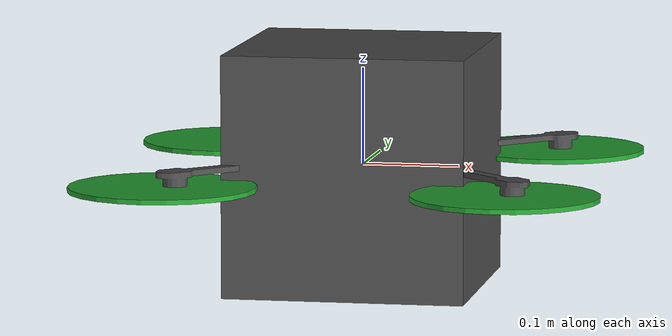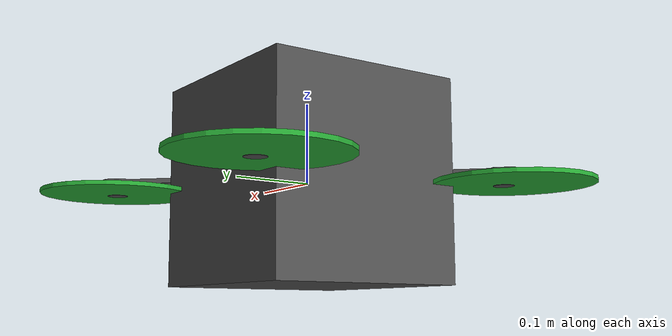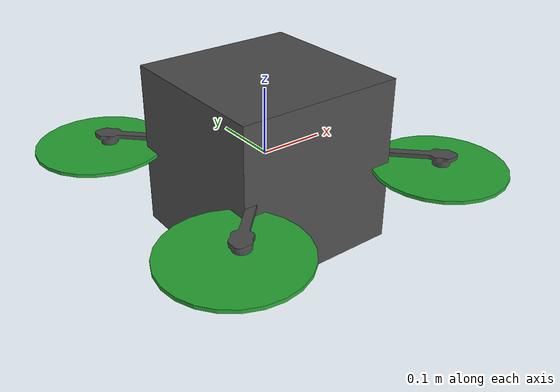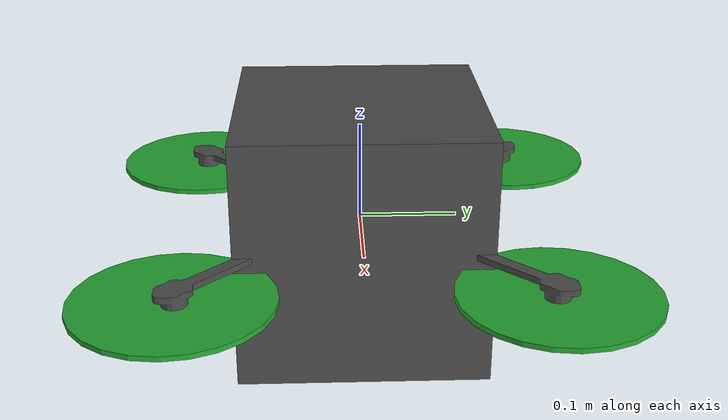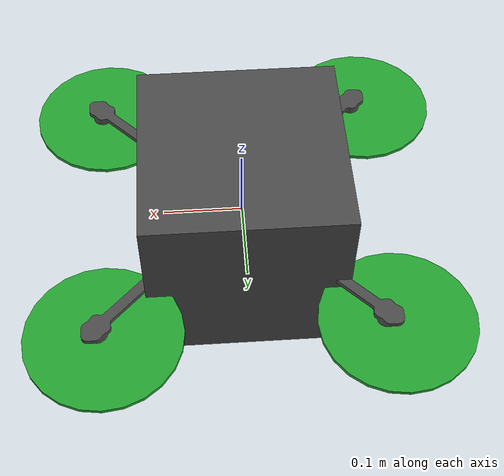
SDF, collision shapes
<sdf version='1.6'>
  <model name='omniquad'>
    <link name='base_link'>
      <pose>0 0 0 0 0 0</pose>
      <inertial>
        <pose>0 0 0 0 0 0</pose>
        <mass>2.260803677220633</mass>
        <inertia>
          <ixx>0.088329</ixx>
          <ixy>0.000113</ixy>
          <ixz>-2.4e-05</ixz>
          <iyy>0.101628</iyy>
          <iyz>0.7e-06</iyz>
          <izz>0.104362</izz>
        </inertia>
      </inertial>
      <collision name='base_link_inertia_collision'>
        <pose>0 0 0 0 0 0</pose>
        <geometry>
          <box>
            <size>0.25 0.25 0.25</size>
          </box>
        </geometry>
        <surface>
          <contact>
            <ode>
              <min_depth>0.001</min_depth>
              <max_vel>0</max_vel>
            </ode>
          </contact>
          <friction>
            <ode/>
          </friction>
        </surface>
      </collision>
      <visual name='base_link_inertia_visual'>
        <pose>0 0 0 0 0 0</pose>
        <geometry>
          <mesh>
            <scale>1e-3 1e-3 1e-3</scale>
            <uri>model://omniquad/meshes/base_new.stl</uri>
          </mesh>
        </geometry>
        <material>
          <script>
            <name>Gazebo/DarkGrey</name>
            <uri>file://media/materials/scripts/gazebo.material</uri>
          </script>
        </material>
      </visual>
      <gravity>1</gravity>
      <velocity_decay/>
      <self_collide>0</self_collide>
    </link>
    <link name='/imu_link'>
      <pose>0 0 0.05 0 0 0</pose>
      <inertial>
        <pose>0 0 0 0 0 0</pose>
        <mass>0.015</mass>
        <inertia>
          <ixx>1e-05</ixx>
          <ixy>0</ixy>
          <ixz>0</ixz>
          <iyy>1e-05</iyy>
          <iyz>0</iyz>
          <izz>1e-05</izz>
        </inertia>
      </inertial>
    </link>
    <joint name='imu_joint' type='revolute'>
      <child>/imu_link</child>
      <parent>base_link</parent>
      <axis>
        <xyz>1 0 0</xyz>
        <limit>
          <lower>0</lower>
          <upper>0</upper>
          <effort>0</effort>
          <velocity>0</velocity>
        </limit>
        <dynamics>
          <spring_reference>0</spring_reference>
          <spring_stiffness>0</spring_stiffness>
        </dynamics>
        <use_parent_model_frame>1</use_parent_model_frame>
      </axis>
    </joint>

    <!-- arm -->
    <link name='tilt_arm_1'>
      <pose>0.06 -0.05 0.0085 3.1415 0 -0.786</pose>
      <inertial>
        <pose>0.0 0.0 0.0 0 0 0</pose>
        <mass>0.2031180930624021</mass>
        <inertia>
          <ixx>0.00164</ixx>
          <ixy>0</ixy>
          <ixz>0</ixz>
          <iyy>0.0001829</iyy>
          <iyz>0</iyz>
          <izz>0.001461</izz>
        </inertia>
      </inertial>
      <collision name='tilt_arm_1_collision'>
        <geometry>
          <mesh>
            <scale>1e-3 1e-3 1e-3</scale>
            <uri>model://omniquad/meshes/arm.stl</uri>
          </mesh>
        </geometry>
        <surface>
          <contact>
            <ode/>
          </contact>
          <friction>
            <ode/>
          </friction>
        </surface>
      </collision>
      <visual name='tilt_arm_1_visual'>
        <geometry>
          <mesh>
            <scale>1e-3 1e-3 1e-3</scale>
            <uri>model://omniquad/meshes/arm.stl</uri>
          </mesh>
        </geometry>
        <material>
          <script>
            <name>Gazebo/DarkGrey</name>
            <uri>file://media/materials/scripts/gazebo.material</uri>
          </script>
        </material>
      </visual>
      <gravity>1</gravity>
      <velocity_decay/>
      <self_collide>0</self_collide>
    </link>

    <joint name='tilt_arm_1_joint' type='revolute'>
      <child>tilt_arm_1</child>
      <parent>base_link</parent>
      <axis>
        <xyz expressed_in="__model__">0.785 -0.785 0</xyz>
        <limit>
          <lower>-2</lower>
          <upper>2</upper>
        </limit>
        <dynamics>
          <friction>1.0</friction>
          <spring_reference>0</spring_reference>
          <spring_stiffness>0</spring_stiffness>
        </dynamics>
        <use_parent_model_frame>1</use_parent_model_frame>
      </axis>
    </joint>

    <link name='tilt_arm_2'>
      <pose>-0.04 0.05 0.0085 3.1415 0 2.35619</pose>
      <inertial>
        <pose>0.0 0.0 0.0 0 0 0</pose>
        <mass>0.2031180930624021</mass>
        <inertia>
          <ixx>0.00164</ixx>
          <ixy>0</ixy>
          <ixz>0</ixz>
          <iyy>0.0001829</iyy>
          <iyz>0</iyz>
          <izz>0.001461</izz>
        </inertia>
      </inertial>
      <collision name='tilt_arm_2_collision'>
        <geometry>
          <mesh>
            <scale>1e-3 1e-3 1e-3</scale>
            <uri>model://omniquad/meshes/arm.stl</uri>
          </mesh>
        </geometry>
        <surface>
          <contact>
            <ode/>
          </contact>
          <friction>
            <ode/>
          </friction>
        </surface>
      </collision>
      <visual name='tilt_arm_2_visual'>
        <geometry>
          <mesh>
            <scale>1e-3 1e-3 1e-3</scale>
            <uri>model://omniquad/meshes/arm.stl</uri>
          </mesh>
        </geometry>
        <material>
          <script>
            <name>Gazebo/DarkGrey</name>
            <uri>file://media/materials/scripts/gazebo.material</uri>
          </script>
        </material>
      </visual>
      <gravity>1</gravity>
      <velocity_decay/>
      <self_collide>0</self_collide>
    </link>

    <joint name='tilt_arm_2_joint' type='revolute'>
      <child>tilt_arm_2</child>
      <parent>base_link</parent>
      <axis>
        <xyz expressed_in="__model__">-0.785 0.785 0</xyz>
        <limit>
          <lower>-2</lower>
          <upper>2</upper>
        </limit>
        <dynamics>
          <friction>1.0</friction>
          <spring_reference>0</spring_reference>
          <spring_stiffness>0</spring_stiffness>
        </dynamics>
        <use_parent_model_frame>1</use_parent_model_frame>
      </axis>
    </joint>

    <link name='tilt_arm_3'>
      <pose>0.06 0.05 0.0085 3.1415 0 0.785398</pose>
      <inertial>
        <pose>0.0 0.0 0.0 0 0 0</pose>
        <mass>0.2031180930624021</mass>
        <inertia>
          <ixx>0.00164</ixx>
          <ixy>0</ixy>
          <ixz>0</ixz>
          <iyy>0.0001829</iyy>
          <iyz>0</iyz>
          <izz>0.001461</izz>
        </inertia>
      </inertial>
      <collision name='tilt_arm_3_collision'>
        <geometry>
          <mesh>
            <scale>1e-3 1e-3 1e-3</scale>
            <uri>model://omniquad/meshes/arm.stl</uri>
          </mesh>
        </geometry>
        <surface>
          <contact>
            <ode/>
          </contact>
          <friction>
            <ode/>
          </friction>
        </surface>
      </collision>
      <visual name='tilt_arm_3_visual'>
        <geometry>
          <mesh>
            <scale>1e-3 1e-3 1e-3</scale>
            <uri>model://omniquad/meshes/arm.stl</uri>
          </mesh>
        </geometry>
        <material>
          <script>
            <name>Gazebo/DarkGrey</name>
            <uri>file://media/materials/scripts/gazebo.material</uri>
          </script>
        </material>
      </visual>
      <gravity>1</gravity>
      <velocity_decay/>
      <self_collide>0</self_collide>
    </link>

    <joint name='tilt_arm_3_joint' type='revolute'>
      <child>tilt_arm_3</child>
      <parent>base_link</parent>
      <axis>
        <xyz expressed_in="__model__">0.785 0.785 0</xyz>
        <limit>
          <lower>-2</lower>
          <upper>2</upper>
        </limit>
        <dynamics>
          <friction>1.0</friction>
          <spring_reference>0</spring_reference>
          <spring_stiffness>0</spring_stiffness>
        </dynamics>
        <use_parent_model_frame>1</use_parent_model_frame>
      </axis>
    </joint>

    <link name='tilt_arm_4'>
      <pose>-0.04 -0.05 0.0085 3.1415 0 3.925</pose>
      <inertial>
        <pose>0.0 0.0 0.0 0 0 0</pose>
        <mass>0.2031180930624021</mass>
        <inertia>
          <ixx>0.00164</ixx>
          <ixy>0</ixy>
          <ixz>0</ixz>
          <iyy>0.0001829</iyy>
          <iyz>0</iyz>
          <izz>0.001461</izz>
        </inertia>
      </inertial>
      <collision name='tilt_arm_4_collision'>
        <geometry>
          <mesh>
            <scale>1e-3 1e-3 1e-3</scale>
            <uri>model://omniquad/meshes/arm.stl</uri>
          </mesh>
        </geometry>
        <surface>
          <contact>
            <ode/>
          </contact>
          <friction>
            <ode/>
          </friction>
        </surface>
      </collision>
      <visual name='tilt_arm_4_visual'>
        <geometry>
          <mesh>
            <scale>1e-3 1e-3 1e-3</scale>
            <uri>model://omniquad/meshes/arm.stl</uri>
          </mesh>
        </geometry>
        <material>
          <script>
            <name>Gazebo/DarkGrey</name>
            <uri>file://media/materials/scripts/gazebo.material</uri>
          </script>
        </material>
      </visual>
      <gravity>1</gravity>
      <velocity_decay/>
      <self_collide>0</self_collide>
    </link>

    <joint name='tilt_arm_4_joint' type='revolute'>
      <child>tilt_arm_4</child>
      <parent>base_link</parent>
      <axis>
        <xyz expressed_in="__model__">-0.785 -0.785 0</xyz>
        <limit>
          <lower>-2</lower>
          <upper>2</upper>
        </limit>
        <dynamics>
          <friction>1.0</friction>
          <spring_reference>0</spring_reference>
          <spring_stiffness>0</spring_stiffness>
        </dynamics>
        <use_parent_model_frame>1</use_parent_model_frame>
      </axis>
    </joint>

    <!-- rotors -->
    <link name="rotor_1">
      <gravity>true</gravity>
      <self_collide>false</self_collide>
      <velocity_decay />
      <pose>0.175 -0.175 -0.005 0 0 0</pose>
      <inertial>
        <pose>0 0 0 0 0 0</pose>
        <mass>0.005</mass>
        <inertia>
          <ixx>9.75e-07</ixx>
          <ixy>0</ixy>
          <ixz>0</ixz>
          <iyy>0.000273104</iyy>
          <iyz>0</iyz>
          <izz>0.000274004</izz>
        </inertia>
      </inertial>
      <visual name='rotor_1_visual'>
        <pose>0 0 0 0 0 0</pose>
        <geometry>
          <mesh>
            <scale>0.75 0.75 0.75</scale>
            <uri>model://omniquad_base/meshes/iris_prop_ccw.dae</uri>
          </mesh>
        </geometry>
        <material>
          <script>
            <name>Gazebo/Green</name>
            <uri>file://media/materials/scripts/gazebo.material</uri>
          </script>
        </material>
      </visual>
      <collision name='rotor_1_collision'>
        <pose>0 0 0 0 0 0</pose>
        <geometry>
          <cylinder>
            <length>0.005</length>
            <radius>0.096</radius>
          </cylinder>
        </geometry>
        <surface>
          <contact>
            <ode/>
          </contact>
          <friction>
            <ode/>
          </friction>
        </surface>
      </collision>
    </link>
    <joint name='rotor_1_joint' type='revolute'>
      <child>rotor_1</child>
      <parent>tilt_arm_1</parent>
      <axis>
        <xyz>0 0 1</xyz>
        <limit>
          <lower>-1e+16</lower>
          <upper>1e+16</upper>
        </limit>
        <dynamics>
          <spring_reference>0</spring_reference>
          <spring_stiffness>0</spring_stiffness>
        </dynamics>
      </axis>
    </joint>

    <link name="rotor_2">
      <gravity>true</gravity>
      <self_collide>false</self_collide>
      <velocity_decay />
      <pose>-0.175 0.175 -0.005 0 0 0</pose>
      <inertial>
        <mass>0.005</mass>
        <inertia>
          <ixx>9.75e-07</ixx>
          <ixy>0</ixy>
          <ixz>0</ixz>
          <iyy>0.000273104</iyy>
          <iyz>0</iyz>
          <izz>0.000274004</izz>
        </inertia>
      </inertial>
      <visual name="rotor_2_visual">
        <pose>0 0 0 0 0 0</pose>
        <geometry>
          <mesh>
            <scale>0.75 0.75 0.75</scale>
            <uri>model://omniquad_base/meshes/iris_prop_cw.dae</uri>
          </mesh>
        </geometry>
        <material>
          <script>
            <name>Gazebo/Green</name>
            <uri>file://media/materials/scripts/gazebo.material</uri>
          </script>
        </material>
      </visual>
      <collision name="rotor_2_collision">
        <pose>0 0 0 0 0 0</pose>
        <geometry>
          <cylinder>
            <length>0.005</length>
            <radius>0.096</radius>
          </cylinder>
        </geometry>
        <surface>
          <contact>
            <ode>
              <min_depth>0.001</min_depth>
              <max_vel>0</max_vel>
            </ode>
          </contact>
          <friction>
            <ode />
          </friction>
        </surface>
      </collision>
    </link>
    <joint name="rotor_2_joint" type="revolute">
      <child>rotor_2</child>
      <parent>tilt_arm_2</parent>
      <axis>
        <xyz>0 0 1</xyz>
        <limit>
          <lower>-1e+16</lower>
          <upper>1e+16</upper>
        </limit>
        <dynamics>
          <spring_reference>0</spring_reference>
          <spring_stiffness>0</spring_stiffness>
        </dynamics>
      </axis>
    </joint>

    <link name="rotor_3">
      <gravity>true</gravity>
      <self_collide>false</self_collide>
      <velocity_decay />
      <pose>0.175 0.175 -0.005 0 0 0</pose>
      <inertial>
        <mass>0.005</mass>
        <inertia>
          <ixx>9.75e-07</ixx>
          <ixy>0</ixy>
          <ixz>0</ixz>
          <iyy>0.000273104</iyy>
          <iyz>0</iyz>
          <izz>0.000274004</izz>
        </inertia>
      </inertial>
      <visual name="rotor_3_visual">
        <pose>0 0 0 0 0 0</pose>
        <geometry>
          <mesh>
            <scale>0.75 0.75 0.75</scale>
            <uri>model://omniquad_base/meshes/iris_prop_ccw.dae</uri>
          </mesh>
        </geometry>
        <material>
          <script>
            <name>Gazebo/Green</name>
            <uri>file://media/materials/scripts/gazebo.material</uri>
          </script>
        </material>
      </visual>
      <collision name="rotor_3_collision">
        <pose>0 0 0 0 0 0</pose>
        <geometry>
          <cylinder>
            <length>0.005</length>
            <radius>0.096</radius>
          </cylinder>
        </geometry>
        <surface>
          <contact>
            <ode>
              <min_depth>0.001</min_depth>
              <max_vel>0</max_vel>
            </ode>
          </contact>
          <friction>
            <ode />
          </friction>
        </surface>
      </collision>
    </link>
    <joint name="rotor_3_joint" type="revolute">
      <child>rotor_3</child>
      <parent>tilt_arm_3</parent>
      <axis>
        <xyz>0 0 1</xyz>
        <limit>
          <lower>-1e+16</lower>
          <upper>1e+16</upper>
        </limit>
        <dynamics>
          <spring_reference>0</spring_reference>
          <spring_stiffness>0</spring_stiffness>
        </dynamics>
      </axis>
    </joint>

    <link name="rotor_4">
      <gravity>true</gravity>
      <self_collide>false</self_collide>
      <velocity_decay />
      <pose>-0.175 -0.175 -0.005 0 0 0</pose>
      <inertial>
        <mass>0.005</mass>
        <inertia>
          <ixx>9.75e-07</ixx>
          <ixy>0</ixy>
          <ixz>0</ixz>
          <iyy>0.000273104</iyy>
          <iyz>0</iyz>
          <izz>0.000274004</izz>
        </inertia>
      </inertial>
      <visual name="rotor_4_visual">
        <pose>0 0 0 0 0 0</pose>
        <geometry>
          <mesh>
            <scale>0.75 0.75 0.75</scale>
            <uri>model://omniquad_base/meshes/iris_prop_cw.dae</uri>
          </mesh>
        </geometry>
        <material>
          <script>
            <name>Gazebo/Green</name>
            <uri>file://media/materials/scripts/gazebo.material</uri>
          </script>
        </material>
      </visual>
      <collision name="rotor_4_collision">
        <pose>0 0 0 0 0 0</pose>
        <geometry>
          <cylinder>
            <length>0.005</length>
            <radius>0.096</radius>
          </cylinder>
        </geometry>
        <surface>
          <contact>
            <ode>
              <min_depth>0.001</min_depth>
              <max_vel>0</max_vel>
            </ode>
          </contact>
          <friction>
            <ode />
          </friction>
        </surface>
      </collision>
    </link>
    <joint name="rotor_4_joint" type="revolute">
      <child>rotor_4</child>
      <parent>tilt_arm_4</parent>
      <axis>
        <xyz>0 0 1</xyz>
        <limit>
          <lower>-1e+16</lower>
          <upper>1e+16</upper>
        </limit>
        <dynamics>
          <spring_reference>0</spring_reference>
          <spring_stiffness>0</spring_stiffness>
        </dynamics>
      </axis>
    </joint>

    <!-- Plugins -->
    <plugin name='rosbag' filename='libgazebo_multirotor_base_plugin.so'>
      <robotNamespace/>
      <linkName>base_link</linkName>
      <rotorVelocitySlowdownSim>10</rotorVelocitySlowdownSim>
    </plugin>
    <plugin name='motor_1_model' filename='libgazebo_motor_model.so'>
      <robotNamespace/>
      <jointName>rotor_1_joint</jointName>
      <linkName>rotor_1</linkName>
      <turningDirection>ccw</turningDirection>
      <timeConstantUp>0.0125</timeConstantUp>
      <timeConstantDown>0.025</timeConstantDown>
      <maxRotVelocity>1100</maxRotVelocity>
      <motorConstant>9.84e-06</motorConstant>
      <momentConstant>0.09</momentConstant>
      <commandSubTopic>/gazebo/command/motor_speed</commandSubTopic>
      <motorNumber>0</motorNumber>
      <rotorDragCoefficient>0.000175</rotorDragCoefficient>
      <rollingMomentCoefficient>1e-06</rollingMomentCoefficient>
      <motorSpeedPubTopic>/motor_speed/0</motorSpeedPubTopic>
      <rotorVelocitySlowdownSim>10</rotorVelocitySlowdownSim>
    </plugin>
    <plugin name='motor_2_model' filename='libgazebo_motor_model.so'>
      <robotNamespace/>
      <jointName>rotor_2_joint</jointName>
      <linkName>rotor_2</linkName>
      <turningDirection>cw</turningDirection>
      <timeConstantUp>0.0125</timeConstantUp>
      <timeConstantDown>0.025</timeConstantDown>
      <maxRotVelocity>1100</maxRotVelocity>
      <motorConstant>9.84e-06</motorConstant>
      <momentConstant>0.09</momentConstant>
      <commandSubTopic>/gazebo/command/motor_speed</commandSubTopic>
      <motorNumber>1</motorNumber>
      <rotorDragCoefficient>0.000175</rotorDragCoefficient>
      <rollingMomentCoefficient>1e-06</rollingMomentCoefficient>
      <motorSpeedPubTopic>/motor_speed/1</motorSpeedPubTopic>
      <rotorVelocitySlowdownSim>10</rotorVelocitySlowdownSim>
    </plugin>
    <plugin name='motor_3_model' filename='libgazebo_motor_model.so'>
      <robotNamespace/>
      <jointName>rotor_3_joint</jointName>
      <linkName>rotor_3</linkName>
      <turningDirection>ccw</turningDirection>
      <timeConstantUp>0.0125</timeConstantUp>
      <timeConstantDown>0.025</timeConstantDown>
      <maxRotVelocity>1100</maxRotVelocity>
      <motorConstant>9.84e-06</motorConstant>
      <momentConstant>0.09</momentConstant>
      <commandSubTopic>/gazebo/command/motor_speed</commandSubTopic>
      <motorNumber>2</motorNumber>
      <rotorDragCoefficient>0.000175</rotorDragCoefficient>
      <rollingMomentCoefficient>1e-06</rollingMomentCoefficient>
      <motorSpeedPubTopic>/motor_speed/2</motorSpeedPubTopic>
      <rotorVelocitySlowdownSim>10</rotorVelocitySlowdownSim>
    </plugin>
    <plugin name='motor_4_model' filename='libgazebo_motor_model.so'>
      <robotNamespace/>
      <jointName>rotor_4_joint</jointName>
      <linkName>rotor_4</linkName>
      <turningDirection>cw</turningDirection>
      <timeConstantUp>0.0125</timeConstantUp>
      <timeConstantDown>0.025</timeConstantDown>
      <maxRotVelocity>1100</maxRotVelocity>
      <motorConstant>9.84e-06</motorConstant>
      <momentConstant>0.09</momentConstant>
      <commandSubTopic>/gazebo/command/motor_speed</commandSubTopic>
      <motorNumber>3</motorNumber>
      <rotorDragCoefficient>0.000175</rotorDragCoefficient>
      <rollingMomentCoefficient>1e-06</rollingMomentCoefficient>
      <motorSpeedPubTopic>/motor_speed/3</motorSpeedPubTopic>
      <rotorVelocitySlowdownSim>10</rotorVelocitySlowdownSim>
    </plugin>

    <include>
      <uri>model://gps</uri>
      <pose>0.05 0 0.04 0 0 0</pose>
      <name>gps0</name>
    </include>
    <joint name='gps0_joint' type='fixed'>
      <child>gps0::link</child>
      <parent>base_link</parent>
    </joint>
    <plugin name='groundtruth_plugin' filename='libgazebo_groundtruth_plugin.so'>
      <robotNamespace/>
    </plugin>
    <plugin name='magnetometer_plugin' filename='libgazebo_magnetometer_plugin.so'>
      <robotNamespace/>
      <pubRate>100</pubRate>
      <noiseDensity>0.0004</noiseDensity>
      <randomWalk>6.4e-06</randomWalk>
      <biasCorrelationTime>600</biasCorrelationTime>
      <magTopic>/mag</magTopic>
    </plugin>
    <plugin name='barometer_plugin' filename='libgazebo_barometer_plugin.so'>
      <robotNamespace/>
      <pubRate>50</pubRate>
      <baroTopic>/baro</baroTopic>
      <baroDriftPaPerSec>0</baroDriftPaPerSec>
    </plugin>
    <plugin name='mavlink_interface' filename='libgazebo_mavlink_interface.so'>
      <robotNamespace/>
      <imuSubTopic>/imu</imuSubTopic>
      <magSubTopic>/mag</magSubTopic>
      <baroSubTopic>/baro</baroSubTopic>
      <mavlink_addr>INADDR_ANY</mavlink_addr>
      <mavlink_tcp_port>4560</mavlink_tcp_port>
      <mavlink_udp_port>14560</mavlink_udp_port>
      <serialEnabled>0</serialEnabled>
      <serialDevice>/dev/ttyACM0</serialDevice>
      <baudRate>921600</baudRate>
      <qgc_addr>INADDR_ANY</qgc_addr>
      <qgc_udp_port>14550</qgc_udp_port>
      <sdk_addr>INADDR_ANY</sdk_addr>
      <sdk_udp_port>14540</sdk_udp_port>
      <hil_mode>0</hil_mode>
      <hil_state_level>0</hil_state_level>
      <send_vision_estimation>0</send_vision_estimation>
      <send_odometry>1</send_odometry>
      <enable_lockstep>1</enable_lockstep>
      <use_tcp>1</use_tcp>
      <motorSpeedCommandPubTopic>/gazebo/command/motor_speed</motorSpeedCommandPubTopic>
      <control_channels>
        <channel name='rotor1'>
          <input_index>0</input_index>
          <input_offset>0</input_offset>
          <input_scaling>1000</input_scaling>
          <zero_position_disarmed>0</zero_position_disarmed>
          <zero_position_armed>100</zero_position_armed>
          <joint_control_type>velocity</joint_control_type>
        </channel>
        <channel name='rotor2'>
          <input_index>1</input_index>
          <input_offset>0</input_offset>
          <input_scaling>1000</input_scaling>
          <zero_position_disarmed>0</zero_position_disarmed>
          <zero_position_armed>100</zero_position_armed>
          <joint_control_type>velocity</joint_control_type>
        </channel>
        <channel name='rotor3'>
          <input_index>2</input_index>
          <input_offset>0</input_offset>
          <input_scaling>1000</input_scaling>
          <zero_position_disarmed>0</zero_position_disarmed>
          <zero_position_armed>100</zero_position_armed>
          <joint_control_type>velocity</joint_control_type>
        </channel>
        <channel name='rotor4'>
          <input_index>3</input_index>
          <input_offset>0</input_offset>
          <input_scaling>1000</input_scaling>
          <zero_position_disarmed>0</zero_position_disarmed>
          <zero_position_armed>100</zero_position_armed>
          <joint_control_type>velocity</joint_control_type>
        </channel>

        <channel name="motor_tilt_arm_br">
          <input_index>8</input_index>
          <input_offset>0.0</input_offset>
          <input_scaling>1.57</input_scaling>
          <zero_position_disarmed>0</zero_position_disarmed>
          <zero_position_armed>0</zero_position_armed>
          <joint_control_type>position</joint_control_type>
          <joint_name>tilt_arm_1_joint</joint_name>
           <joint_control_pid>
            <p>10</p>
            <i>0.0</i>
            <d>0.25</d>
            <iMax>0.0</iMax>
            <iMin>0.0</iMin>
            <cmdMax>2</cmdMax>
            <cmdMin>-2</cmdMin>
          </joint_control_pid>
        </channel>
        <channel name='motor_tilt_arm_bl'>
          <input_index>9</input_index>
          <input_offset>0.0</input_offset>
          <input_scaling>1.57</input_scaling>
          <zero_position_disarmed>0</zero_position_disarmed>
          <zero_position_armed>0</zero_position_armed>
          <joint_control_type>position</joint_control_type>
          <joint_name>tilt_arm_2_joint</joint_name>
          <joint_control_pid>
            <p>10.0</p>
            <i>0</i>
            <d>0.25</d>
            <iMax>0</iMax>
            <iMin>0</iMin>
            <cmdMax>2</cmdMax>
            <cmdMin>-2</cmdMin>
          </joint_control_pid>
        </channel>
        <channel name="motor_tilt_arm_fr">
          <input_index>10</input_index>
          <input_offset>0.0</input_offset>
          <input_scaling>1.57</input_scaling>
          <zero_position_disarmed>0</zero_position_disarmed>
          <zero_position_armed>0</zero_position_armed>
          <joint_control_type>position</joint_control_type>
          <joint_name>tilt_arm_3_joint</joint_name>
           <joint_control_pid>
            <p>10</p>
            <i>0.0</i>
            <d>0.25</d>
            <iMax>0.0</iMax>
            <iMin>0.0</iMin>
            <cmdMax>2</cmdMax>
            <cmdMin>-2</cmdMin>
          </joint_control_pid>
        </channel>
        <channel name='motor_tilt_arm_fl'>
          <input_index>11</input_index>
          <input_offset>0.0</input_offset>
          <input_scaling>1.57</input_scaling>
          <zero_position_disarmed>0</zero_position_disarmed>
          <zero_position_armed>0</zero_position_armed>
          <joint_control_type>position</joint_control_type>
          <joint_name>tilt_arm_4_joint</joint_name>
          <joint_control_pid>
            <p>10.0</p>
            <i>0</i>
            <d>0.25</d>
            <iMax>0</iMax>
            <iMin>0</iMin>
            <cmdMax>2</cmdMax>
            <cmdMin>-2</cmdMin>
          </joint_control_pid>
        </channel>
      </control_channels>
    </plugin>
    <static>0</static>
    <plugin name='rotors_gazebo_imu_plugin' filename='libgazebo_imu_plugin.so'>
      <robotNamespace/>
      <linkName>/imu_link</linkName>
      <imuTopic>/imu</imuTopic>
      <gyroscopeNoiseDensity>0.00018665</gyroscopeNoiseDensity>
      <gyroscopeRandomWalk>3.8785e-05</gyroscopeRandomWalk>
      <gyroscopeBiasCorrelationTime>1000.0</gyroscopeBiasCorrelationTime>
      <gyroscopeTurnOnBiasSigma>0.0087</gyroscopeTurnOnBiasSigma>
      <accelerometerNoiseDensity>0.00186</accelerometerNoiseDensity>
      <accelerometerRandomWalk>0.006</accelerometerRandomWalk>
      <accelerometerBiasCorrelationTime>300.0</accelerometerBiasCorrelationTime>
      <accelerometerTurnOnBiasSigma>0.196</accelerometerTurnOnBiasSigma>
    </plugin>
  </model>
</sdf>

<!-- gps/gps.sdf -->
<sdf version="1.6">
  <model name="gps">
    <link name="link">
      <pose>0 0 0 0 0 0</pose>
      <inertial>
        <pose>0 0 0 0 0 0</pose>
        <mass>0.015</mass>
        <inertia>
          <ixx>1e-05</ixx>
          <ixy>0</ixy>
          <ixz>0</ixz>
          <iyy>1e-05</iyy>
          <iyz>0</iyz>
          <izz>1e-05</izz>
        </inertia>
      </inertial>
      <visual name="visual">
        <geometry>
          <cylinder>
            <radius>0.01</radius>
            <length>0.002</length>
          </cylinder>
        </geometry>
        <material>
          <script>
            <name>Gazebo/Black</name>
          </script>
        </material>
      </visual>
      <sensor name="gps" type="gps">
        <pose>0 0 0 0 0 0</pose>
        <update_rate>5.0</update_rate>
        <always_on>true</always_on>
        <visualize>false</visualize>
        <!-- GpsSensor noise currently not used -->
        <plugin name="gps_plugin" filename="libgazebo_geocoordinate_gps_plugin.so">
          <robotNamespace></robotNamespace>
          <gpsNoise>true</gpsNoise>
          <gpsXYRandomWalk>2.0</gpsXYRandomWalk>
          <gpsZRandomWalk>4.0</gpsZRandomWalk>
          <gpsXYNoiseDensity>2.0e-4</gpsXYNoiseDensity>
          <gpsZNoiseDensity>4.0e-4</gpsZNoiseDensity>
          <gpsVXYNoiseDensity>0.2</gpsVXYNoiseDensity>
          <gpsVZNoiseDensity>0.4</gpsVZNoiseDensity>
        </plugin>
      </sensor>
    </link>
  </model>
</sdf>
